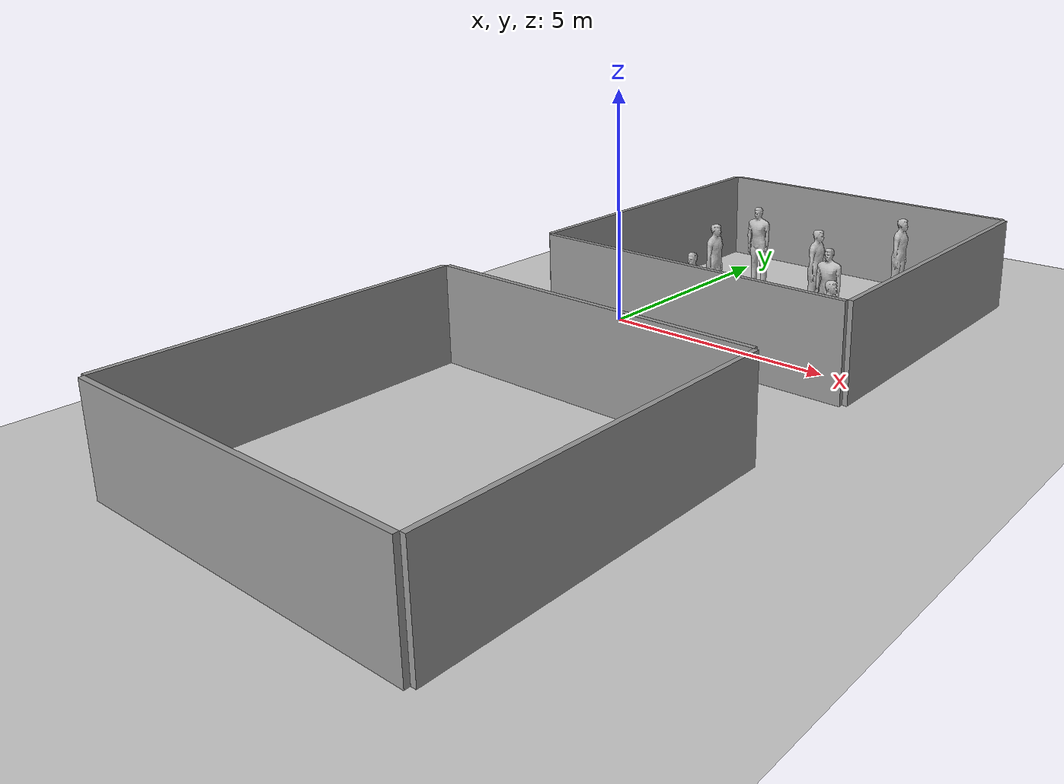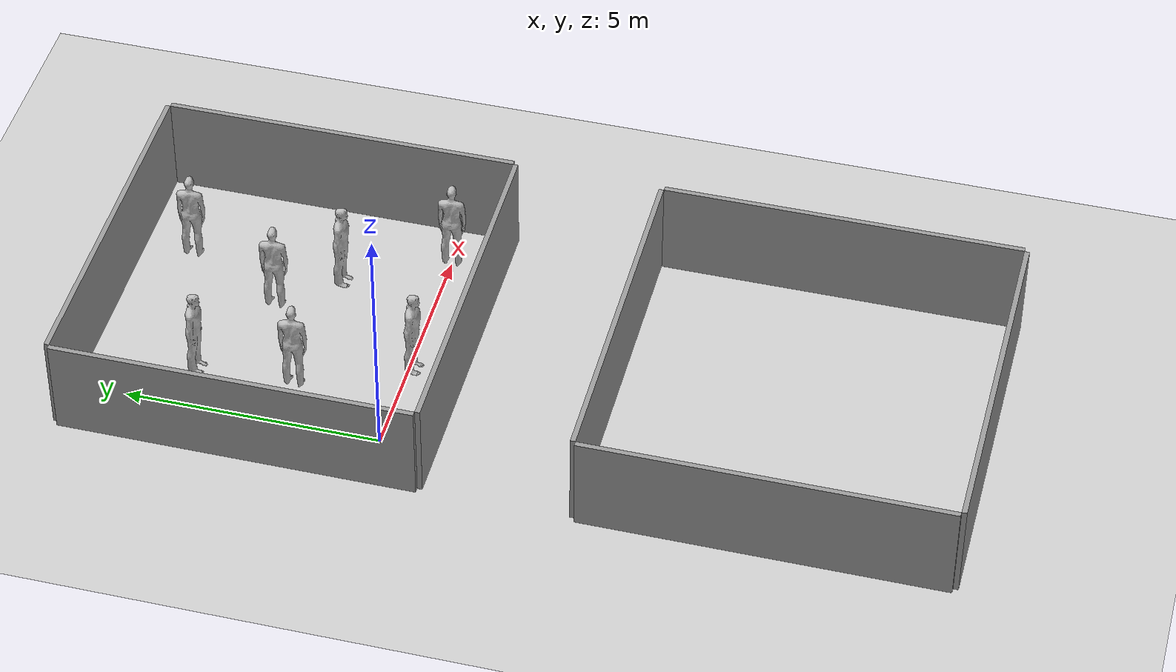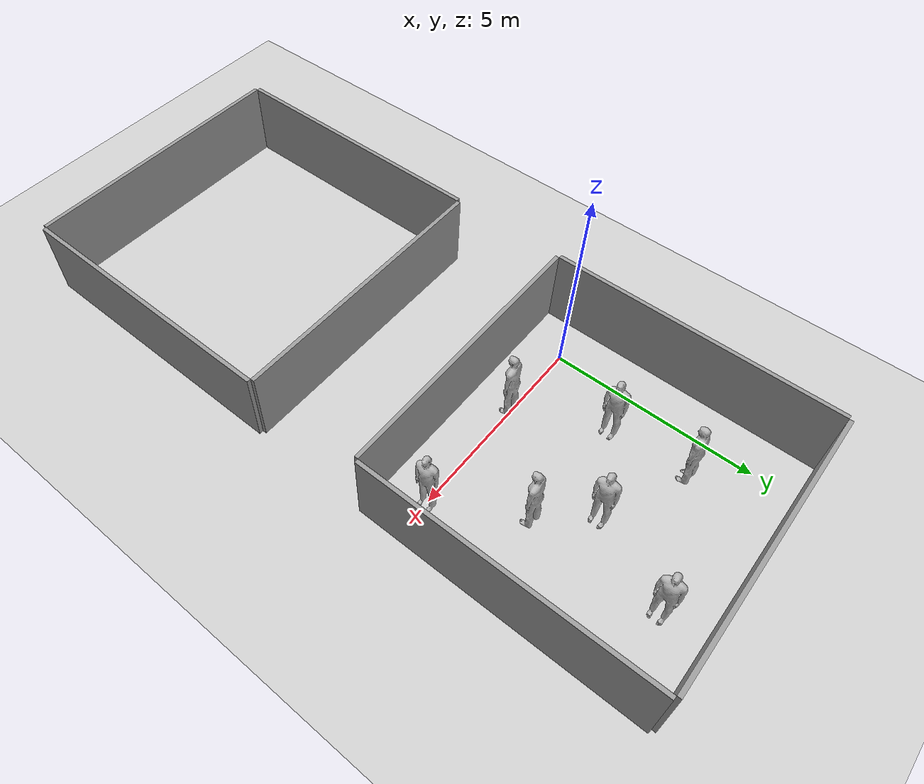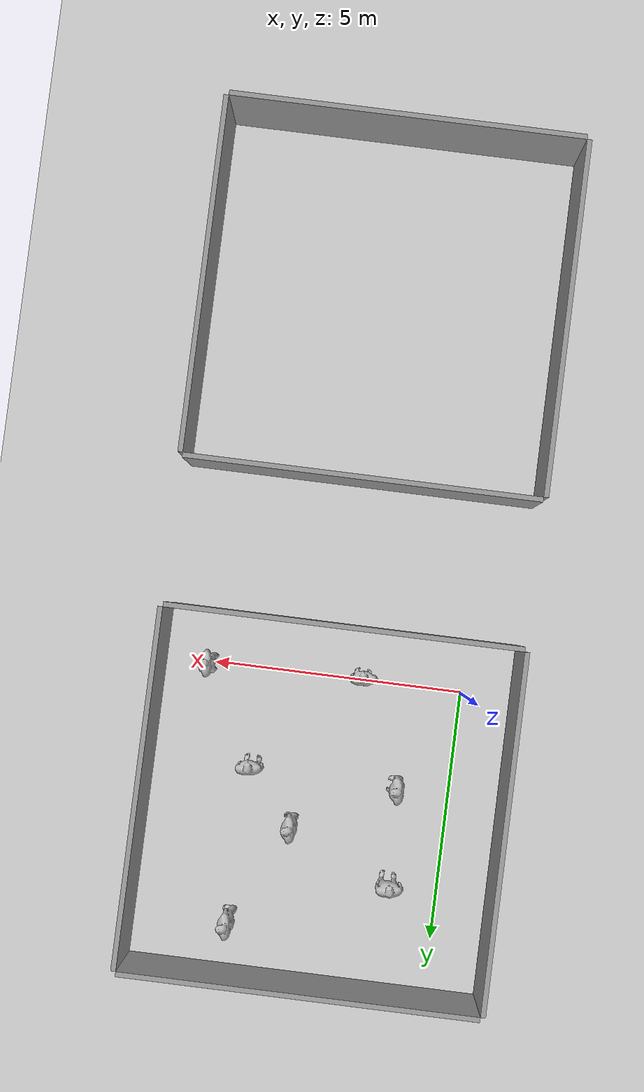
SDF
<sdf version='1.6'>
  <world name='default'>
    <include>
      <uri>model://ground_plane</uri>
    </include>

    <include>
      <uri>model://sun</uri>
    </include>

    <model name='wall_left'>
      <pose frame=''>0 0 0 0 0 0</pose>
      <link name='Wall_bottom'>
        <collision name='Wall_0_Collision'>
          <geometry>
            <box>
              <size>7 0.1 2</size>
            </box>
          </geometry>
          <pose frame=''>0 0 0 0 -0 0</pose>
          <max_contacts>10</max_contacts>
        </collision>
        <visual name='Wall_0_Visual'>
          <pose frame=''>0 0 0 0 -0 0</pose>
          <geometry>
            <box>
              <size>7 0.1 2</size>
            </box>
          </geometry>
          <material>
            <script>
              <uri>file://media/materials/scripts/gazebo.material</uri>
              <name>Gazebo/Grey</name>
            </script>
            <ambient>1 1 1 1</ambient>
          </material>
          <meta>
            <layer>0</layer>
          </meta>
        </visual>
        <pose frame=''>2.5 -1.05 1 0 -0 0</pose>
      </link>

      <link name='Wall_up'>
        <collision name='Wall_0_Collision'>
          <geometry>
            <box>
              <size>7 0.1 2</size>
            </box>
          </geometry>
          <pose frame=''>0 0 0 0 -0 0</pose>
          <max_contacts>10</max_contacts>
        </collision>
        <visual name='Wall_0_Visual'>
          <pose frame=''>0 0 0 0 -0 0</pose>
          <geometry>
            <box>
              <size>7 0.1 2</size>
            </box>
          </geometry>
          <material>
            <script>
              <uri>file://media/materials/scripts/gazebo.material</uri>
              <name>Gazebo/Grey</name>
            </script>
            <ambient>1 1 1 1</ambient>
          </material>
          <meta>
            <layer>0</layer>
          </meta>
        </visual>
        <pose frame=''>2.5 6.05 1 0 -0 0</pose>
      </link>

      <link name='Wall_left'>
        <collision name='Wall_1_Collision'>
          <geometry>
            <box>
              <size>0.1 7 2</size>
            </box>
          </geometry>
          <pose frame=''>0 0 0 0 -0 0</pose>
          <max_contacts>10</max_contacts>
        </collision>
        <visual name='Wall_1_Visual'>
          <pose frame=''>0 0 0 0 -0 0</pose>
          <geometry>
            <box>
              <size>0.1 7 2</size>
            </box>
          </geometry>
          <material>
            <script>
              <uri>file://media/materials/scripts/gazebo.material</uri>
              <name>Gazebo/Grey</name>
            </script>
            <ambient>1 1 1 1</ambient>
          </material>
          <meta>
            <layer>0</layer>
          </meta>
        </visual>
        <pose frame=''>-1.05 2.5 1 0 -0 0</pose>
      </link>

      <link name='Wall_right'>
        <collision name='Wall_1_Collision'>
          <geometry>
            <box>
              <size>0.1 7 2</size>
            </box>
          </geometry>
          <pose frame=''>0 0 0 0 -0 0</pose>
          <max_contacts>10</max_contacts>
        </collision>
        <visual name='Wall_1_Visual'>
          <pose frame=''>0 0 0 0 -0 0</pose>
          <geometry>
            <box>
              <size>0.1 7 2</size>
            </box>
          </geometry>
          <material>
            <script>
              <uri>file://media/materials/scripts/gazebo.material</uri>
              <name>Gazebo/Grey</name>
            </script>
            <ambient>1 1 1 1</ambient>
          </material>
          <meta>
            <layer>0</layer>
          </meta>
        </visual>
        <pose frame=''>6.05 2.5 1 0 -0 0</pose>
      </link>
      <static>1</static>
    </model>

    <model name='wall_left_down'>
      <pose frame=''>0 -10 0 0 0 0</pose>
      <link name='Wall_bottom'>
        <collision name='Wall_0_Collision'>
          <geometry>
            <box>
              <size>7 0.1 2</size>
            </box>
          </geometry>
          <pose frame=''>0 0 0 0 -0 0</pose>
          <max_contacts>10</max_contacts>
        </collision>
        <visual name='Wall_0_Visual'>
          <pose frame=''>0 0 0 0 -0 0</pose>
          <geometry>
            <box>
              <size>7 0.1 2</size>
            </box>
          </geometry>
          <material>
            <script>
              <uri>file://media/materials/scripts/gazebo.material</uri>
              <name>Gazebo/Grey</name>
            </script>
            <ambient>1 1 1 1</ambient>
          </material>
          <meta>
            <layer>0</layer>
          </meta>
        </visual>
        <pose frame=''>2.5 -1.05 1 0 -0 0</pose>
      </link>

      <link name='Wall_up'>
        <collision name='Wall_0_Collision'>
          <geometry>
            <box>
              <size>7 0.1 2</size>
            </box>
          </geometry>
          <pose frame=''>0 0 0 0 -0 0</pose>
          <max_contacts>10</max_contacts>
        </collision>
        <visual name='Wall_0_Visual'>
          <pose frame=''>0 0 0 0 -0 0</pose>
          <geometry>
            <box>
              <size>7 0.1 2</size>
            </box>
          </geometry>
          <material>
            <script>
              <uri>file://media/materials/scripts/gazebo.material</uri>
              <name>Gazebo/Grey</name>
            </script>
            <ambient>1 1 1 1</ambient>
          </material>
          <meta>
            <layer>0</layer>
          </meta>
        </visual>
        <pose frame=''>2.5 6.05 1 0 -0 0</pose>
      </link>

      <link name='Wall_left'>
        <collision name='Wall_1_Collision'>
          <geometry>
            <box>
              <size>0.1 7 2</size>
            </box>
          </geometry>
          <pose frame=''>0 0 0 0 -0 0</pose>
          <max_contacts>10</max_contacts>
        </collision>
        <visual name='Wall_1_Visual'>
          <pose frame=''>0 0 0 0 -0 0</pose>
          <geometry>
            <box>
              <size>0.1 7 2</size>
            </box>
          </geometry>
          <material>
            <script>
              <uri>file://media/materials/scripts/gazebo.material</uri>
              <name>Gazebo/Grey</name>
            </script>
            <ambient>1 1 1 1</ambient>
          </material>
          <meta>
            <layer>0</layer>
          </meta>
        </visual>
        <pose frame=''>-1.05 2.5 1 0 -0 0</pose>
      </link>

      <link name='Wall_right'>
        <collision name='Wall_1_Collision'>
          <geometry>
            <box>
              <size>0.1 7 2</size>
            </box>
          </geometry>
          <pose frame=''>0 0 0 0 -0 0</pose>
          <max_contacts>10</max_contacts>
        </collision>
        <visual name='Wall_1_Visual'>
          <pose frame=''>0 0 0 0 -0 0</pose>
          <geometry>
            <box>
              <size>0.1 7 2</size>
            </box>
          </geometry>
          <material>
            <script>
              <uri>file://media/materials/scripts/gazebo.material</uri>
              <name>Gazebo/Grey</name>
            </script>
            <ambient>1 1 1 1</ambient>
          </material>
          <meta>
            <layer>0</layer>
          </meta>
        </visual>
        <pose frame=''>6.05 2.5 1 0 -0 0</pose>
      </link>
      <static>1</static>
    </model>

    <model name='stand4'>
      <link name='link'>
        <inertial>
          <pose frame=''>0 -0.1 0.95 0 -0 0</pose>
          <mass>80</mass>
          <inertia>
            <ixx>24.88</ixx>
            <ixy>0</ixy>
            <ixz>0</ixz>
            <iyy>25.73</iyy>
            <iyz>0</iyz>
            <izz>2.48</izz>
          </inertia>
        </inertial>
        <collision name='bottom'>
          <pose frame=''>0 -0.1 0.01 0 -0 0</pose>
          <geometry>
            <box>
              <size>0.5 0.35 0.02</size>
            </box>
          </geometry>
          <max_contacts>10</max_contacts>
          <surface>
            <contact>
              <ode/>
            </contact>
            <bounce/>
            <friction>
              <torsional>
                <ode/>
              </torsional>
              <ode/>
            </friction>
          </surface>
        </collision>
        <collision name='person'>
          <pose frame=''>0 0 0.02 0.04 -0 0</pose>
          <geometry>
            <mesh>
              <uri>model://person_standing/meshes/standing.dae</uri>
            </mesh>
          </geometry>
          <max_contacts>10</max_contacts>
          <surface>
            <contact>
              <ode/>
            </contact>
            <bounce/>
            <friction>
              <torsional>
                <ode/>
              </torsional>
              <ode/>
            </friction>
          </surface>
        </collision>
        <visual name='visual'>
          <pose frame=''>0 0 0.02 0.04 -0 0</pose>
          <geometry>
            <mesh>
              <uri>model://person_standing/meshes/standing.dae</uri>
            </mesh>
          </geometry>
        </visual>
        <self_collide>0</self_collide>
        <enable_wind>0</enable_wind>
        <kinematic>0</kinematic>
      </link>
      <pose frame=''>1 2 0 0 -0 1.57</pose>
    </model>

    <model name='stand0'>
      <link name='link'>
        <inertial>
          <pose frame=''>0 -0.1 0.95 0 -0 0</pose>
          <mass>80</mass>
          <inertia>
            <ixx>24.88</ixx>
            <ixy>0</ixy>
            <ixz>0</ixz>
            <iyy>25.73</iyy>
            <iyz>0</iyz>
            <izz>2.48</izz>
          </inertia>
        </inertial>
        <collision name='bottom'>
          <pose frame=''>0 -0.1 0.01 0 -0 0</pose>
          <geometry>
            <box>
              <size>0.5 0.35 0.02</size>
            </box>
          </geometry>
          <max_contacts>10</max_contacts>
          <surface>
            <contact>
              <ode/>
            </contact>
            <bounce/>
            <friction>
              <torsional>
                <ode/>
              </torsional>
              <ode/>
            </friction>
          </surface>
        </collision>
        <collision name='person'>
          <pose frame=''>0 0 0.02 0.04 -0 0</pose>
          <geometry>
            <mesh>
              <uri>model://person_standing/meshes/standing.dae</uri>
            </mesh>
          </geometry>
          <max_contacts>10</max_contacts>
          <surface>
            <contact>
              <ode/>
            </contact>
            <bounce/>
            <friction>
              <torsional>
                <ode/>
              </torsional>
              <ode/>
            </friction>
          </surface>
        </collision>
        <visual name='visual'>
          <pose frame=''>0 0 0.02 0.04 -0 0</pose>
          <geometry>
            <mesh>
              <uri>model://person_standing/meshes/standing.dae</uri>
            </mesh>
          </geometry>
        </visual>
        <self_collide>0</self_collide>
        <enable_wind>0</enable_wind>
        <kinematic>0</kinematic>
      </link>
      <pose frame=''>1 4 0 0 -0 0</pose>
    </model>

    <model name='stand5'>
      <link name='link'>
        <inertial>
          <pose frame=''>0 -0.1 0.95 0 -0 0</pose>
          <mass>80</mass>
          <inertia>
            <ixx>24.88</ixx>
            <ixy>0</ixy>
            <ixz>0</ixz>
            <iyy>25.73</iyy>
            <iyz>0</iyz>
            <izz>2.48</izz>
          </inertia>
        </inertial>
        <collision name='bottom'>
          <pose frame=''>0 -0.1 0.01 0 -0 0</pose>
          <geometry>
            <box>
              <size>0.5 0.35 0.02</size>
            </box>
          </geometry>
          <max_contacts>10</max_contacts>
          <surface>
            <contact>
              <ode/>
            </contact>
            <bounce/>
            <friction>
              <torsional>
                <ode/>
              </torsional>
              <ode/>
            </friction>
          </surface>
        </collision>
        <collision name='person'>
          <pose frame=''>0 0 0.02 0.04 -0 0</pose>
          <geometry>
            <mesh>
              <uri>model://person_standing/meshes/standing.dae</uri>
            </mesh>
          </geometry>
          <max_contacts>10</max_contacts>
          <surface>
            <contact>
              <ode/>
            </contact>
            <bounce/>
            <friction>
              <torsional>
                <ode/>
              </torsional>
              <ode/>
            </friction>
          </surface>
        </collision>
        <visual name='visual'>
          <pose frame=''>0 0 0.02 0.04 -0 0</pose>
          <geometry>
            <mesh>
              <uri>model://person_standing/meshes/standing.dae</uri>
            </mesh>
          </geometry>
        </visual>
        <self_collide>0</self_collide>
        <enable_wind>0</enable_wind>
        <kinematic>0</kinematic>
      </link>
      <pose frame=''>3 3 0 0 -0 1.57</pose>
    </model>

    <model name='stand6'>
      <link name='link'>
        <inertial>
          <pose frame=''>0 -0.1 0.95 0 -0 0</pose>
          <mass>80</mass>
          <inertia>
            <ixx>24.88</ixx>
            <ixy>0</ixy>
            <ixz>0</ixz>
            <iyy>25.73</iyy>
            <iyz>0</iyz>
            <izz>2.48</izz>
          </inertia>
        </inertial>
        <collision name='bottom'>
          <pose frame=''>0 -0.1 0.01 0 -0 0</pose>
          <geometry>
            <box>
              <size>0.5 0.35 0.02</size>
            </box>
          </geometry>
          <max_contacts>10</max_contacts>
          <surface>
            <contact>
              <ode/>
            </contact>
            <bounce/>
            <friction>
              <torsional>
                <ode/>
              </torsional>
              <ode/>
            </friction>
          </surface>
        </collision>
        <collision name='person'>
          <pose frame=''>0 0 0.02 0.04 -0 0</pose>
          <geometry>
            <mesh>
              <uri>model://person_standing/meshes/standing.dae</uri>
            </mesh>
          </geometry>
          <max_contacts>10</max_contacts>
          <surface>
            <contact>
              <ode/>
            </contact>
            <bounce/>
            <friction>
              <torsional>
                <ode/>
              </torsional>
              <ode/>
            </friction>
          </surface>
        </collision>
        <visual name='visual'>
          <pose frame=''>0 0 0.02 0.04 -0 0</pose>
          <geometry>
            <mesh>
              <uri>model://person_standing/meshes/standing.dae</uri>
            </mesh>
          </geometry>
        </visual>
        <self_collide>0</self_collide>
        <enable_wind>0</enable_wind>
        <kinematic>0</kinematic>
      </link>
      <pose frame=''>4 2 0 0 -0 0</pose>
    </model>

    <model name='stand1'>
      <link name='link'>
        <inertial>
          <pose frame=''>0 -0.1 0.95 0 -0 0</pose>
          <mass>80</mass>
          <inertia>
            <ixx>24.88</ixx>
            <ixy>0</ixy>
            <ixz>0</ixz>
            <iyy>25.73</iyy>
            <iyz>0</iyz>
            <izz>2.48</izz>
          </inertia>
        </inertial>
        <collision name='bottom'>
          <pose frame=''>0 -0.1 0.01 0 -0 0</pose>
          <geometry>
            <box>
              <size>0.5 0.35 0.02</size>
            </box>
          </geometry>
          <max_contacts>10</max_contacts>
          <surface>
            <contact>
              <ode/>
            </contact>
            <bounce/>
            <friction>
              <torsional>
                <ode/>
              </torsional>
              <ode/>
            </friction>
          </surface>
        </collision>
        <collision name='person'>
          <pose frame=''>0 0 0.02 0.04 -0 0</pose>
          <geometry>
            <mesh>
              <uri>model://person_standing/meshes/standing.dae</uri>
            </mesh>
          </geometry>
          <max_contacts>10</max_contacts>
          <surface>
            <contact>
              <ode/>
            </contact>
            <bounce/>
            <friction>
              <torsional>
                <ode/>
              </torsional>
              <ode/>
            </friction>
          </surface>
        </collision>
        <visual name='visual'>
          <pose frame=''>0 0 0.02 0.04 -0 0</pose>
          <geometry>
            <mesh>
              <uri>model://person_standing/meshes/standing.dae</uri>
            </mesh>
          </geometry>
        </visual>
        <self_collide>0</self_collide>
        <enable_wind>0</enable_wind>
        <kinematic>0</kinematic>
      </link>
      <pose frame=''>5 0 0 -0 0 1.57</pose>
    </model>

    <model name='stand2'>
      <link name='link'>
        <inertial>
          <pose frame=''>0 -0.1 0.95 0 -0 0</pose>
          <mass>80</mass>
          <inertia>
            <ixx>24.88</ixx>
            <ixy>0</ixy>
            <ixz>0</ixz>
            <iyy>25.73</iyy>
            <iyz>0</iyz>
            <izz>2.48</izz>
          </inertia>
        </inertial>
        <collision name='bottom'>
          <pose frame=''>0 -0.1 0.01 0 -0 0</pose>
          <geometry>
            <box>
              <size>0.5 0.35 0.02</size>
            </box>
          </geometry>
          <max_contacts>10</max_contacts>
          <surface>
            <contact>
              <ode/>
            </contact>
            <bounce/>
            <friction>
              <torsional>
                <ode/>
              </torsional>
              <ode/>
            </friction>
          </surface>
        </collision>
        <collision name='person'>
          <pose frame=''>0 0 0.02 0.04 -0 0</pose>
          <geometry>
            <mesh>
              <uri>model://person_standing/meshes/standing.dae</uri>
            </mesh>
          </geometry>
          <max_contacts>10</max_contacts>
          <surface>
            <contact>
              <ode/>
            </contact>
            <bounce/>
            <friction>
              <torsional>
                <ode/>
              </torsional>
              <ode/>
            </friction>
          </surface>
        </collision>
        <visual name='visual'>
          <pose frame=''>0 0 0.02 0.04 -0 0</pose>
          <geometry>
            <mesh>
              <uri>model://person_standing/meshes/standing.dae</uri>
            </mesh>
          </geometry>
        </visual>
        <self_collide>0</self_collide>
        <enable_wind>0</enable_wind>
        <kinematic>0</kinematic>
      </link>
      <pose frame=''>4 5 0 -0 0 1.57</pose>
    </model>

    <model name='stand3'>
      <link name='link'>
        <inertial>
          <pose frame=''>0 -0.1 0.95 0 -0 0</pose>
          <mass>80</mass>
          <inertia>
            <ixx>24.88</ixx>
            <ixy>0</ixy>
            <ixz>0</ixz>
            <iyy>25.73</iyy>
            <iyz>0</iyz>
            <izz>2.48</izz>
          </inertia>
        </inertial>
        <collision name='bottom'>
          <pose frame=''>0 -0.1 0.01 0 -0 0</pose>
          <geometry>
            <box>
              <size>0.5 0.35 0.02</size>
            </box>
          </geometry>
          <max_contacts>10</max_contacts>
          <surface>
            <contact>
              <ode/>
            </contact>
            <bounce/>
            <friction>
              <torsional>
                <ode/>
              </torsional>
              <ode/>
            </friction>
          </surface>
        </collision>
        <collision name='person'>
          <pose frame=''>0 0 0.02 0.04 -0 0</pose>
          <geometry>
            <mesh>
              <uri>model://person_standing/meshes/standing.dae</uri>
            </mesh>
          </geometry>
          <max_contacts>10</max_contacts>
          <surface>
            <contact>
              <ode/>
            </contact>
            <bounce/>
            <friction>
              <torsional>
                <ode/>
              </torsional>
              <ode/>
            </friction>
          </surface>
        </collision>
        <visual name='visual'>
          <pose frame=''>0 0 0.02 0.04 -0 0</pose>
          <geometry>
            <mesh>
              <uri>model://person_standing/meshes/standing.dae</uri>
            </mesh>
          </geometry>
        </visual>
        <self_collide>0</self_collide>
        <enable_wind>0</enable_wind>
        <kinematic>0</kinematic>
      </link>
      <pose frame=''>2 0 0 -0 0 0</pose>
    </model>
  </world>
</sdf>
